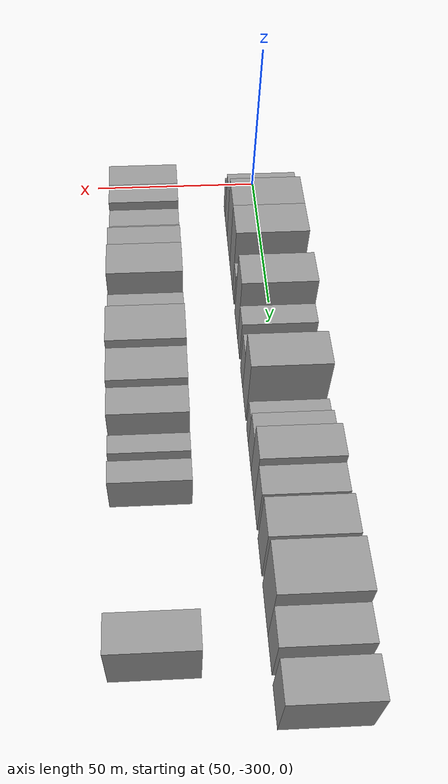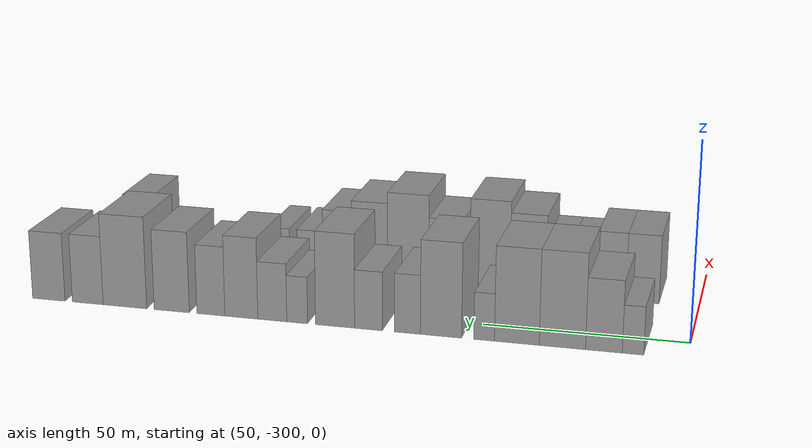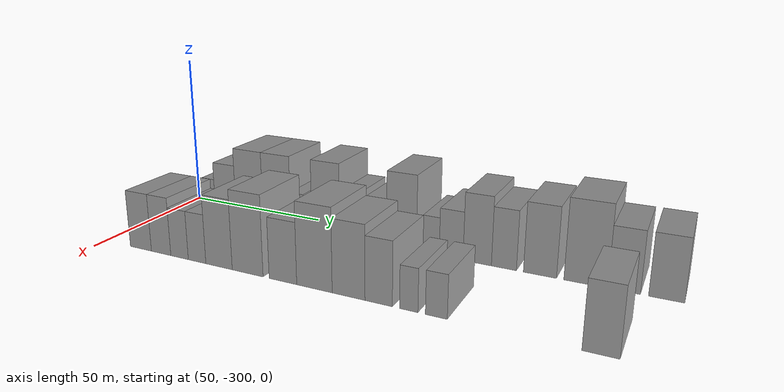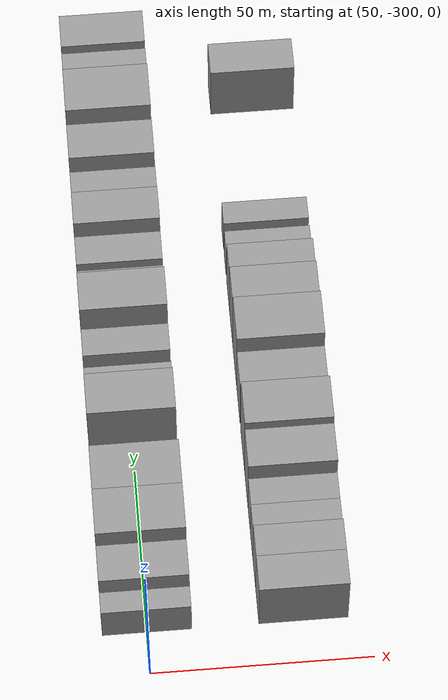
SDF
<sdf version="1.6">
 <world name="default">
  <model name="building_1">
   <static>1</static>
   <pose>50.0000 -287.4973 0 0.000000 0.000000 0.000000</pose>
   <link name="link">
    <pose>0 0 6.00 0 0 0</pose>
    <collision name="collision"><geometry><box><size>20.0000 5.0055 12.0000</size></box></geometry></collision>
    <visual name="visual">
     <cast_shadows>0</cast_shadows>
     <geometry><box><size>20.0000 5.0055 12.0000</size></box></geometry>
     <material>
      <script>
       <uri>model://grey_wall/materials/scripts</uri>
       <uri>model://grey_wall/materials/textures</uri>
       <name>vrc/grey_wall</name>
      </script>
     </material>
    </visual>
   </link>
  </model>
  <model name="building_2">
   <static>1</static>
   <pose>50.0000 -280.6761 0 0.000000 0.000000 0.000000</pose>
   <link name="link">
    <pose>0 0 9.00 0 0 0</pose>
    <collision name="collision"><geometry><box><size>20.0000 8.6367 18.0000</size></box></geometry></collision>
    <visual name="visual">
     <cast_shadows>0</cast_shadows>
     <geometry><box><size>20.0000 8.6367 18.0000</size></box></geometry>
     <material>
      <script>
       <uri>model://grey_wall/materials/scripts</uri>
       <uri>model://grey_wall/materials/textures</uri>
       <name>vrc/grey_wall</name>
      </script>
     </material>
    </visual>
   </link>
  </model>
  <model name="building_3">
   <static>1</static>
   <pose>50.0000 -270.8673 0 0.000000 0.000000 0.000000</pose>
   <link name="link">
    <pose>0 0 12.00 0 0 0</pose>
    <collision name="collision"><geometry><box><size>20.0000 10.9810 24.0000</size></box></geometry></collision>
    <visual name="visual">
     <cast_shadows>0</cast_shadows>
     <geometry><box><size>20.0000 10.9810 24.0000</size></box></geometry>
     <material>
      <script>
       <uri>model://grey_wall/materials/scripts</uri>
       <uri>model://grey_wall/materials/textures</uri>
       <name>vrc/grey_wall</name>
      </script>
     </material>
    </visual>
   </link>
  </model>
  <model name="building_4">
   <static>1</static>
   <pose>50.0000 -259.9896 0 0.000000 0.000000 0.000000</pose>
   <link name="link">
    <pose>0 0 12.00 0 0 0</pose>
    <collision name="collision"><geometry><box><size>20.0000 10.7745 24.0000</size></box></geometry></collision>
    <visual name="visual">
     <cast_shadows>0</cast_shadows>
     <geometry><box><size>20.0000 10.7745 24.0000</size></box></geometry>
     <material>
      <script>
       <uri>model://grey_wall/materials/scripts</uri>
       <uri>model://grey_wall/materials/textures</uri>
       <name>vrc/grey_wall</name>
      </script>
     </material>
    </visual>
   </link>
  </model>
  <model name="building_5">
   <static>1</static>
   <pose>50.0000 -252.1168 0 0.000000 0.000000 0.000000</pose>
   <link name="link">
    <pose>0 0 6.00 0 0 0</pose>
    <collision name="collision"><geometry><box><size>20.0000 4.9711 12.0000</size></box></geometry></collision>
    <visual name="visual">
     <cast_shadows>0</cast_shadows>
     <geometry><box><size>20.0000 4.9711 12.0000</size></box></geometry>
     <material>
      <script>
       <uri>model://grey_wall/materials/scripts</uri>
       <uri>model://grey_wall/materials/textures</uri>
       <name>vrc/grey_wall</name>
      </script>
     </material>
    </visual>
   </link>
  </model>
  <model name="building_6">
   <static>1</static>
   <pose>50.0000 -241.5734 0 0.000000 0.000000 0.000000</pose>
   <link name="link">
    <pose>0 0 12.00 0 0 0</pose>
    <collision name="collision"><geometry><box><size>20.0000 10.1158 24.0000</size></box></geometry></collision>
    <visual name="visual">
     <cast_shadows>0</cast_shadows>
     <geometry><box><size>20.0000 10.1158 24.0000</size></box></geometry>
     <material>
      <script>
       <uri>model://grey_wall/materials/scripts</uri>
       <uri>model://grey_wall/materials/textures</uri>
       <name>vrc/grey_wall</name>
      </script>
     </material>
    </visual>
   </link>
  </model>
  <model name="building_7">
   <static>1</static>
   <pose>50.0000 -233.3102 0 0.000000 0.000000 0.000000</pose>
   <link name="link">
    <pose>0 0 7.50 0 0 0</pose>
    <collision name="collision"><geometry><box><size>20.0000 6.4105 15.0000</size></box></geometry></collision>
    <visual name="visual">
     <cast_shadows>0</cast_shadows>
     <geometry><box><size>20.0000 6.4105 15.0000</size></box></geometry>
     <material>
      <script>
       <uri>model://grey_wall/materials/scripts</uri>
       <uri>model://grey_wall/materials/textures</uri>
       <name>vrc/grey_wall</name>
      </script>
     </material>
    </visual>
   </link>
  </model>
  <model name="building_8">
   <static>1</static>
   <pose>50.0000 -223.6317 0 0.000000 0.000000 0.000000</pose>
   <link name="link">
    <pose>0 0 7.50 0 0 0</pose>
    <collision name="collision"><geometry><box><size>20.0000 6.9466 15.0000</size></box></geometry></collision>
    <visual name="visual">
     <cast_shadows>0</cast_shadows>
     <geometry><box><size>20.0000 6.9466 15.0000</size></box></geometry>
     <material>
      <script>
       <uri>model://grey_wall/materials/scripts</uri>
       <uri>model://grey_wall/materials/textures</uri>
       <name>vrc/grey_wall</name>
      </script>
     </material>
    </visual>
   </link>
  </model>
  <model name="building_9">
   <static>1</static>
   <pose>50.0000 -215.2181 0 0.000000 0.000000 0.000000</pose>
   <link name="link">
    <pose>0 0 12.00 0 0 0</pose>
    <collision name="collision"><geometry><box><size>20.0000 9.8805 24.0000</size></box></geometry></collision>
    <visual name="visual">
     <cast_shadows>0</cast_shadows>
     <geometry><box><size>20.0000 9.8805 24.0000</size></box></geometry>
     <material>
      <script>
       <uri>model://grey_wall/materials/scripts</uri>
       <uri>model://grey_wall/materials/textures</uri>
       <name>vrc/grey_wall</name>
      </script>
     </material>
    </visual>
   </link>
  </model>
  <model name="building_10">
   <static>1</static>
   <pose>50.0000 -205.6280 0 0.000000 0.000000 0.000000</pose>
   <link name="link">
    <pose>0 0 6.00 0 0 0</pose>
    <collision name="collision"><geometry><box><size>20.0000 5.2998 12.0000</size></box></geometry></collision>
    <visual name="visual">
     <cast_shadows>0</cast_shadows>
     <geometry><box><size>20.0000 5.2998 12.0000</size></box></geometry>
     <material>
      <script>
       <uri>model://grey_wall/materials/scripts</uri>
       <uri>model://grey_wall/materials/textures</uri>
       <name>vrc/grey_wall</name>
      </script>
     </material>
    </visual>
   </link>
  </model>
  <model name="building_11">
   <static>1</static>
   <pose>50.0000 -199.2638 0 0.000000 0.000000 0.000000</pose>
   <link name="link">
    <pose>0 0 7.50 0 0 0</pose>
    <collision name="collision"><geometry><box><size>20.0000 7.4287 15.0000</size></box></geometry></collision>
    <visual name="visual">
     <cast_shadows>0</cast_shadows>
     <geometry><box><size>20.0000 7.4287 15.0000</size></box></geometry>
     <material>
      <script>
       <uri>model://grey_wall/materials/scripts</uri>
       <uri>model://grey_wall/materials/textures</uri>
       <name>vrc/grey_wall</name>
      </script>
     </material>
    </visual>
   </link>
  </model>
  <model name="building_12">
   <static>1</static>
   <pose>50.0000 -191.2809 0 0.000000 0.000000 0.000000</pose>
   <link name="link">
    <pose>0 0 10.50 0 0 0</pose>
    <collision name="collision"><geometry><box><size>20.0000 8.5371 21.0000</size></box></geometry></collision>
    <visual name="visual">
     <cast_shadows>0</cast_shadows>
     <geometry><box><size>20.0000 8.5371 21.0000</size></box></geometry>
     <material>
      <script>
       <uri>model://grey_wall/materials/scripts</uri>
       <uri>model://grey_wall/materials/textures</uri>
       <name>vrc/grey_wall</name>
      </script>
     </material>
    </visual>
   </link>
  </model>
  <model name="building_13">
   <static>1</static>
   <pose>50.0000 -183.3547 0 0.000000 0.000000 0.000000</pose>
   <link name="link">
    <pose>0 0 9.00 0 0 0</pose>
    <collision name="collision"><geometry><box><size>20.0000 7.3152 18.0000</size></box></geometry></collision>
    <visual name="visual">
     <cast_shadows>0</cast_shadows>
     <geometry><box><size>20.0000 7.3152 18.0000</size></box></geometry>
     <material>
      <script>
       <uri>model://grey_wall/materials/scripts</uri>
       <uri>model://grey_wall/materials/textures</uri>
       <name>vrc/grey_wall</name>
      </script>
     </material>
    </visual>
   </link>
  </model>
  <model name="building_14">
   <static>1</static>
   <pose>50.0000 -173.0662 0 0.000000 0.000000 0.000000</pose>
   <link name="link">
    <pose>0 0 10.50 0 0 0</pose>
    <collision name="collision"><geometry><box><size>20.0000 9.2618 21.0000</size></box></geometry></collision>
    <visual name="visual">
     <cast_shadows>0</cast_shadows>
     <geometry><box><size>20.0000 9.2618 21.0000</size></box></geometry>
     <material>
      <script>
       <uri>model://grey_wall/materials/scripts</uri>
       <uri>model://grey_wall/materials/textures</uri>
       <name>vrc/grey_wall</name>
      </script>
     </material>
    </visual>
   </link>
  </model>
  <model name="building_15">
   <static>1</static>
   <pose>50.0000 -160.6138 0 0.000000 0.000000 0.000000</pose>
   <link name="link">
    <pose>0 0 12.00 0 0 0</pose>
    <collision name="collision"><geometry><box><size>20.0000 11.6430 24.0000</size></box></geometry></collision>
    <visual name="visual">
     <cast_shadows>0</cast_shadows>
     <geometry><box><size>20.0000 11.6430 24.0000</size></box></geometry>
     <material>
      <script>
       <uri>model://grey_wall/materials/scripts</uri>
       <uri>model://grey_wall/materials/textures</uri>
       <name>vrc/grey_wall</name>
      </script>
     </material>
    </visual>
   </link>
  </model>
  <model name="building_16">
   <static>1</static>
   <pose>50.0000 -150.6305 0 0.000000 0.000000 0.000000</pose>
   <link name="link">
    <pose>0 0 9.00 0 0 0</pose>
    <collision name="collision"><geometry><box><size>20.0000 8.3237 18.0000</size></box></geometry></collision>
    <visual name="visual">
     <cast_shadows>0</cast_shadows>
     <geometry><box><size>20.0000 8.3237 18.0000</size></box></geometry>
     <material>
      <script>
       <uri>model://grey_wall/materials/scripts</uri>
       <uri>model://grey_wall/materials/textures</uri>
       <name>vrc/grey_wall</name>
      </script>
     </material>
    </visual>
   </link>
  </model>
  <model name="building_17">
   <static>1</static>
   <pose>50.0000 -140.0535 0 0.000000 0.000000 0.000000</pose>
   <link name="link">
    <pose>0 0 9.00 0 0 0</pose>
    <collision name="collision"><geometry><box><size>20.0000 8.8303 18.0000</size></box></geometry></collision>
    <visual name="visual">
     <cast_shadows>0</cast_shadows>
     <geometry><box><size>20.0000 8.8303 18.0000</size></box></geometry>
     <material>
      <script>
       <uri>model://grey_wall/materials/scripts</uri>
       <uri>model://grey_wall/materials/textures</uri>
       <name>vrc/grey_wall</name>
      </script>
     </material>
    </visual>
   </link>
  </model>
  <model name="building_59">
   <static>1</static>
   <pose>85.0000 -285.8442 0 0.000000 0.000000 0.000000</pose>
   <link name="link">
    <pose>0 0 9.00 0 0 0</pose>
    <collision name="collision"><geometry><box><size>20.0000 8.3116 18.0000</size></box></geometry></collision>
    <visual name="visual">
     <cast_shadows>0</cast_shadows>
     <geometry><box><size>20.0000 8.3116 18.0000</size></box></geometry>
     <material>
      <script>
       <uri>model://grey_wall/materials/scripts</uri>
       <uri>model://grey_wall/materials/textures</uri>
       <name>vrc/grey_wall</name>
      </script>
     </material>
    </visual>
   </link>
  </model>
  <model name="building_60">
   <static>1</static>
   <pose>85.0000 -277.9580 0 0.000000 0.000000 0.000000</pose>
   <link name="link">
    <pose>0 0 9.00 0 0 0</pose>
    <collision name="collision"><geometry><box><size>20.0000 7.4609 18.0000</size></box></geometry></collision>
    <visual name="visual">
     <cast_shadows>0</cast_shadows>
     <geometry><box><size>20.0000 7.4609 18.0000</size></box></geometry>
     <material>
      <script>
       <uri>model://grey_wall/materials/scripts</uri>
       <uri>model://grey_wall/materials/textures</uri>
       <name>vrc/grey_wall</name>
      </script>
     </material>
    </visual>
   </link>
  </model>
  <model name="building_61">
   <static>1</static>
   <pose>85.0000 -270.9569 0 0.000000 0.000000 0.000000</pose>
   <link name="link">
    <pose>0 0 7.50 0 0 0</pose>
    <collision name="collision"><geometry><box><size>20.0000 6.5413 15.0000</size></box></geometry></collision>
    <visual name="visual">
     <cast_shadows>0</cast_shadows>
     <geometry><box><size>20.0000 6.5413 15.0000</size></box></geometry>
     <material>
      <script>
       <uri>model://grey_wall/materials/scripts</uri>
       <uri>model://grey_wall/materials/textures</uri>
       <name>vrc/grey_wall</name>
      </script>
     </material>
    </visual>
   </link>
  </model>
  <model name="building_62">
   <static>1</static>
   <pose>85.0000 -264.4791 0 0.000000 0.000000 0.000000</pose>
   <link name="link">
    <pose>0 0 7.50 0 0 0</pose>
    <collision name="collision"><geometry><box><size>20.0000 6.4141 15.0000</size></box></geometry></collision>
    <visual name="visual">
     <cast_shadows>0</cast_shadows>
     <geometry><box><size>20.0000 6.4141 15.0000</size></box></geometry>
     <material>
      <script>
       <uri>model://grey_wall/materials/scripts</uri>
       <uri>model://grey_wall/materials/textures</uri>
       <name>vrc/grey_wall</name>
      </script>
     </material>
    </visual>
   </link>
  </model>
  <model name="building_63">
   <static>1</static>
   <pose>85.0000 -256.6060 0 0.000000 0.000000 0.000000</pose>
   <link name="link">
    <pose>0 0 10.50 0 0 0</pose>
    <collision name="collision"><geometry><box><size>20.0000 9.3320 21.0000</size></box></geometry></collision>
    <visual name="visual">
     <cast_shadows>0</cast_shadows>
     <geometry><box><size>20.0000 9.3320 21.0000</size></box></geometry>
     <material>
      <script>
       <uri>model://grey_wall/materials/scripts</uri>
       <uri>model://grey_wall/materials/textures</uri>
       <name>vrc/grey_wall</name>
      </script>
     </material>
    </visual>
   </link>
  </model>
  <model name="building_64">
   <static>1</static>
   <pose>85.0000 -246.7044 0 0.000000 0.000000 0.000000</pose>
   <link name="link">
    <pose>0 0 12.00 0 0 0</pose>
    <collision name="collision"><geometry><box><size>20.0000 10.4712 24.0000</size></box></geometry></collision>
    <visual name="visual">
     <cast_shadows>0</cast_shadows>
     <geometry><box><size>20.0000 10.4712 24.0000</size></box></geometry>
     <material>
      <script>
       <uri>model://grey_wall/materials/scripts</uri>
       <uri>model://grey_wall/materials/textures</uri>
       <name>vrc/grey_wall</name>
      </script>
     </material>
    </visual>
   </link>
  </model>
  <model name="building_65">
   <static>1</static>
   <pose>85.0000 -235.0128 0 0.000000 0.000000 0.000000</pose>
   <link name="link">
    <pose>0 0 9.00 0 0 0</pose>
    <collision name="collision"><geometry><box><size>20.0000 8.9121 18.0000</size></box></geometry></collision>
    <visual name="visual">
     <cast_shadows>0</cast_shadows>
     <geometry><box><size>20.0000 8.9121 18.0000</size></box></geometry>
     <material>
      <script>
       <uri>model://grey_wall/materials/scripts</uri>
       <uri>model://grey_wall/materials/textures</uri>
       <name>vrc/grey_wall</name>
      </script>
     </material>
    </visual>
   </link>
  </model>
  <model name="building_66">
   <static>1</static>
   <pose>85.0000 -225.0713 0 0.000000 0.000000 0.000000</pose>
   <link name="link">
    <pose>0 0 12.00 0 0 0</pose>
    <collision name="collision"><geometry><box><size>20.0000 10.9709 24.0000</size></box></geometry></collision>
    <visual name="visual">
     <cast_shadows>0</cast_shadows>
     <geometry><box><size>20.0000 10.9709 24.0000</size></box></geometry>
     <material>
      <script>
       <uri>model://grey_wall/materials/scripts</uri>
       <uri>model://grey_wall/materials/textures</uri>
       <name>vrc/grey_wall</name>
      </script>
     </material>
    </visual>
   </link>
  </model>
  <model name="building_67">
   <static>1</static>
   <pose>85.0000 -214.7321 0 0.000000 0.000000 0.000000</pose>
   <link name="link">
    <pose>0 0 10.50 0 0 0</pose>
    <collision name="collision"><geometry><box><size>20.0000 9.7075 21.0000</size></box></geometry></collision>
    <visual name="visual">
     <cast_shadows>0</cast_shadows>
     <geometry><box><size>20.0000 9.7075 21.0000</size></box></geometry>
     <material>
      <script>
       <uri>model://grey_wall/materials/scripts</uri>
       <uri>model://grey_wall/materials/textures</uri>
       <name>vrc/grey_wall</name>
      </script>
     </material>
    </visual>
   </link>
  </model>
  <model name="building_68">
   <static>1</static>
   <pose>85.0000 -205.9908 0 0.000000 0.000000 0.000000</pose>
   <link name="link">
    <pose>0 0 9.00 0 0 0</pose>
    <collision name="collision"><geometry><box><size>20.0000 7.7750 18.0000</size></box></geometry></collision>
    <visual name="visual">
     <cast_shadows>0</cast_shadows>
     <geometry><box><size>20.0000 7.7750 18.0000</size></box></geometry>
     <material>
      <script>
       <uri>model://grey_wall/materials/scripts</uri>
       <uri>model://grey_wall/materials/textures</uri>
       <name>vrc/grey_wall</name>
      </script>
     </material>
    </visual>
   </link>
  </model>
  <model name="building_69">
   <static>1</static>
   <pose>85.0000 -197.5848 0 0.000000 0.000000 0.000000</pose>
   <link name="link">
    <pose>0 0 6.00 0 0 0</pose>
    <collision name="collision"><geometry><box><size>20.0000 5.0372 12.0000</size></box></geometry></collision>
    <visual name="visual">
     <cast_shadows>0</cast_shadows>
     <geometry><box><size>20.0000 5.0372 12.0000</size></box></geometry>
     <material>
      <script>
       <uri>model://grey_wall/materials/scripts</uri>
       <uri>model://grey_wall/materials/textures</uri>
       <name>vrc/grey_wall</name>
      </script>
     </material>
    </visual>
   </link>
  </model>
  <model name="building_70">
   <static>1</static>
   <pose>85.0000 -190.1672 0 0.000000 0.000000 0.000000</pose>
   <link name="link">
    <pose>0 0 6.00 0 0 0</pose>
    <collision name="collision"><geometry><box><size>20.0000 5.7979 12.0000</size></box></geometry></collision>
    <visual name="visual">
     <cast_shadows>0</cast_shadows>
     <geometry><box><size>20.0000 5.7979 12.0000</size></box></geometry>
     <material>
      <script>
       <uri>model://grey_wall/materials/scripts</uri>
       <uri>model://grey_wall/materials/textures</uri>
       <name>vrc/grey_wall</name>
      </script>
     </material>
    </visual>
   </link>
  </model>
  <model name="building_71">
   <static>1</static>
   <pose>85.0000 -150.7429 0 0.000000 0.000000 0.000000</pose>
   <link name="link">
    <pose>0 0 9.00 0 0 0</pose>
    <collision name="collision"><geometry><box><size>20.0000 8.3503 18.0000</size></box></geometry></collision>
    <visual name="visual">
     <cast_shadows>0</cast_shadows>
     <geometry><box><size>20.0000 8.3503 18.0000</size></box></geometry>
     <material>
      <script>
       <uri>model://grey_wall/materials/scripts</uri>
       <uri>model://grey_wall/materials/textures</uri>
       <name>vrc/grey_wall</name>
      </script>
     </material>
    </visual>
   </link>
  </model>
 </world>
</sdf>
